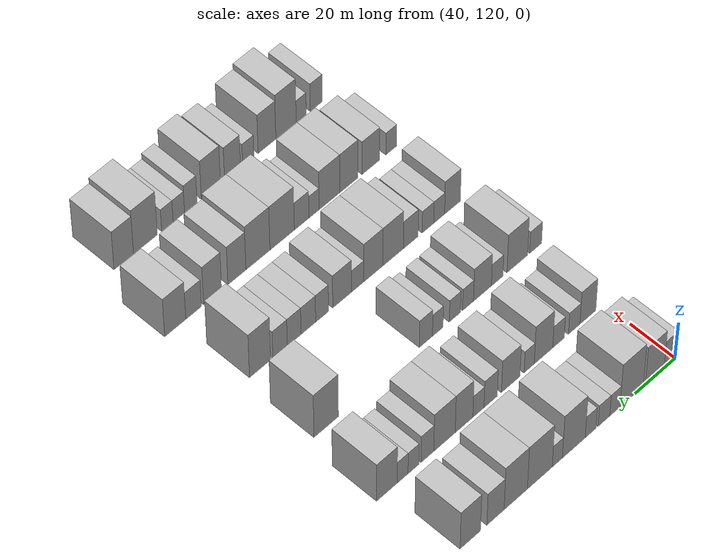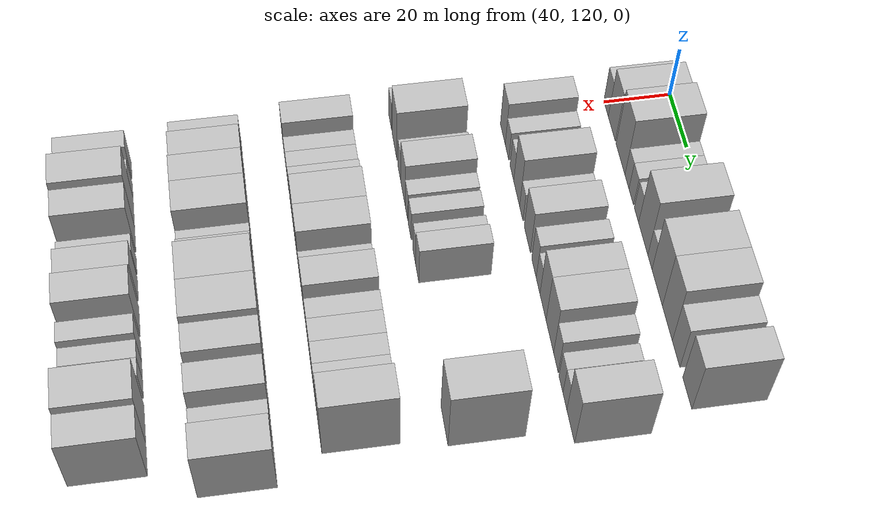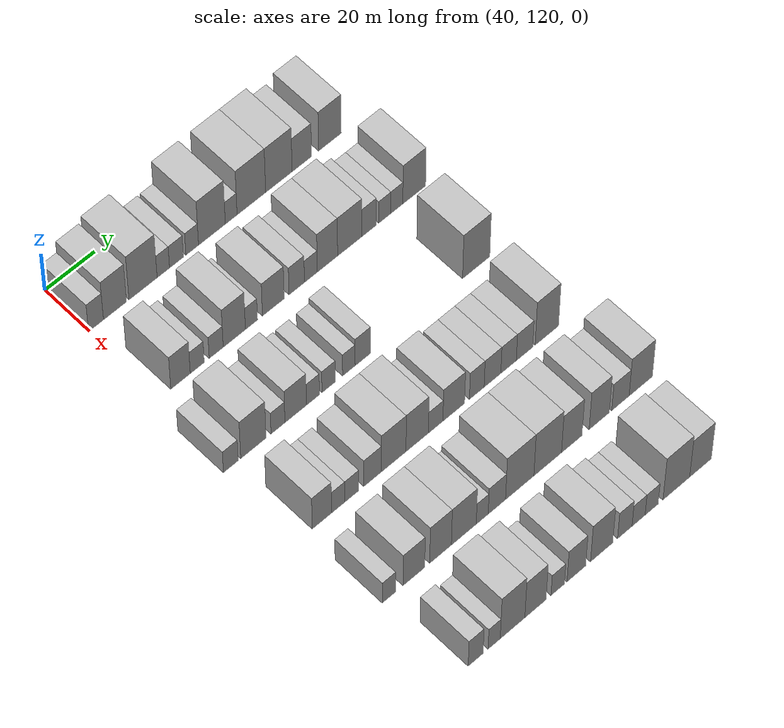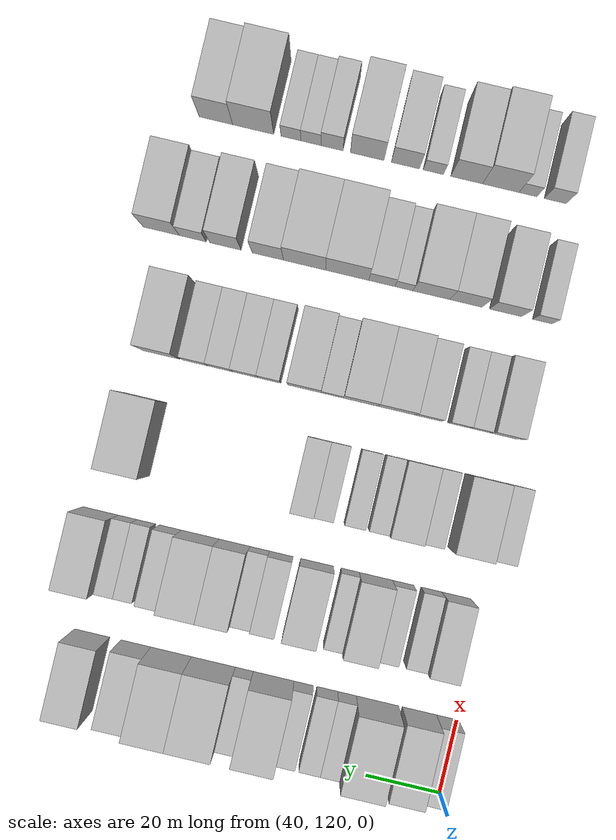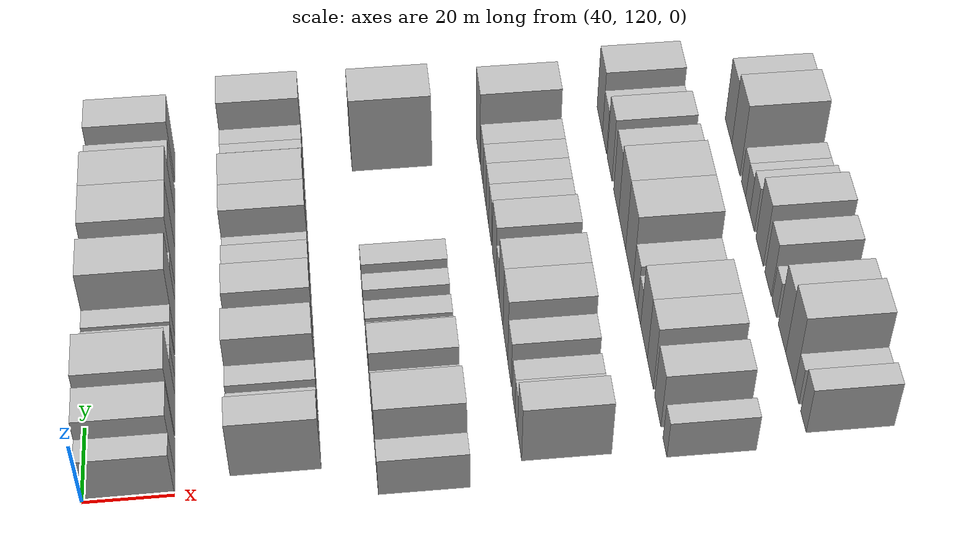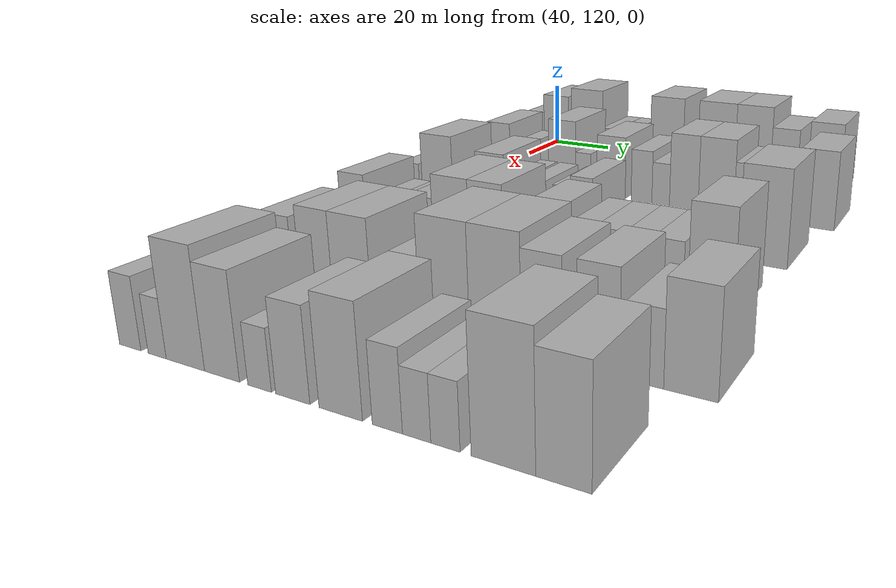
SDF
<sdf version="1.6">
 <world name="default">
  <model name="building_73">
   <static>1</static>
   <pose>50.0000 122.5929 0 0.000000 0.000000 0.000000</pose>
   <link name="link">
    <pose>0 0 7.50 0 0 0</pose>
    <collision name="collision"><geometry><box><size>20.0000 6.0414 15.0000</size></box></geometry></collision>
    <visual name="visual">
     <cast_shadows>0</cast_shadows>
     <geometry><box><size>20.0000 6.0414 15.0000</size></box></geometry>
     <material>
      <script>
       <uri>model://HANNAS_wall/materials/scripts</uri>
       <uri>model://HANNAS_wall/materials/textures</uri>
       <name>vrc/HANNAS_wall</name>
      </script>
     </material>
    </visual>
   </link>
  </model>
  <model name="building_74">
   <static>1</static>
   <pose>50.0000 130.2766 0 0.000000 0.000000 0.000000</pose>
   <link name="link">
    <pose>0 0 10.50 0 0 0</pose>
    <collision name="collision"><geometry><box><size>20.0000 9.3260 21.0000</size></box></geometry></collision>
    <visual name="visual">
     <cast_shadows>0</cast_shadows>
     <geometry><box><size>20.0000 9.3260 21.0000</size></box></geometry>
     <material>
      <script>
       <uri>model://HANNAS_wall/materials/scripts</uri>
       <uri>model://HANNAS_wall/materials/textures</uri>
       <name>vrc/HANNAS_wall</name>
      </script>
     </material>
    </visual>
   </link>
  </model>
  <model name="building_75">
   <static>1</static>
   <pose>50.0000 141.6738 0 0.000000 0.000000 0.000000</pose>
   <link name="link">
    <pose>0 0 12.00 0 0 0</pose>
    <collision name="collision"><geometry><box><size>20.0000 11.4685 24.0000</size></box></geometry></collision>
    <visual name="visual">
     <cast_shadows>0</cast_shadows>
     <geometry><box><size>20.0000 11.4685 24.0000</size></box></geometry>
     <material>
      <script>
       <uri>model://HANNAS_wall/materials/scripts</uri>
       <uri>model://HANNAS_wall/materials/textures</uri>
       <name>vrc/HANNAS_wall</name>
      </script>
     </material>
    </visual>
   </link>
  </model>
  <model name="building_76">
   <static>1</static>
   <pose>50.0000 149.9469 0 0.000000 0.000000 0.000000</pose>
   <link name="link">
    <pose>0 0 6.00 0 0 0</pose>
    <collision name="collision"><geometry><box><size>20.0000 5.0777 12.0000</size></box></geometry></collision>
    <visual name="visual">
     <cast_shadows>0</cast_shadows>
     <geometry><box><size>20.0000 5.0777 12.0000</size></box></geometry>
     <material>
      <script>
       <uri>model://HANNAS_wall/materials/scripts</uri>
       <uri>model://HANNAS_wall/materials/textures</uri>
       <name>vrc/HANNAS_wall</name>
      </script>
     </material>
    </visual>
   </link>
  </model>
  <model name="building_77">
   <static>1</static>
   <pose>50.0000 155.3294 0 0.000000 0.000000 0.000000</pose>
   <link name="link">
    <pose>0 0 6.00 0 0 0</pose>
    <collision name="collision"><geometry><box><size>20.0000 5.6872 12.0000</size></box></geometry></collision>
    <visual name="visual">
     <cast_shadows>0</cast_shadows>
     <geometry><box><size>20.0000 5.6872 12.0000</size></box></geometry>
     <material>
      <script>
       <uri>model://HANNAS_wall/materials/scripts</uri>
       <uri>model://HANNAS_wall/materials/textures</uri>
       <name>vrc/HANNAS_wall</name>
      </script>
     </material>
    </visual>
   </link>
  </model>
  <model name="building_78">
   <static>1</static>
   <pose>50.0000 161.7898 0 0.000000 0.000000 0.000000</pose>
   <link name="link">
    <pose>0 0 6.00 0 0 0</pose>
    <collision name="collision"><geometry><box><size>20.0000 5.2337 12.0000</size></box></geometry></collision>
    <visual name="visual">
     <cast_shadows>0</cast_shadows>
     <geometry><box><size>20.0000 5.2337 12.0000</size></box></geometry>
     <material>
      <script>
       <uri>model://HANNAS_wall/materials/scripts</uri>
       <uri>model://HANNAS_wall/materials/textures</uri>
       <name>vrc/HANNAS_wall</name>
      </script>
     </material>
    </visual>
   </link>
  </model>
  <model name="building_79">
   <static>1</static>
   <pose>50.0000 169.9459 0 0.000000 0.000000 0.000000</pose>
   <link name="link">
    <pose>0 0 12.00 0 0 0</pose>
    <collision name="collision"><geometry><box><size>20.0000 11.0785 24.0000</size></box></geometry></collision>
    <visual name="visual">
     <cast_shadows>0</cast_shadows>
     <geometry><box><size>20.0000 11.0785 24.0000</size></box></geometry>
     <material>
      <script>
       <uri>model://HANNAS_wall/materials/scripts</uri>
       <uri>model://HANNAS_wall/materials/textures</uri>
       <name>vrc/HANNAS_wall</name>
      </script>
     </material>
    </visual>
   </link>
  </model>
  <model name="building_80">
   <static>1</static>
   <pose>50.0000 177.9156 0 0.000000 0.000000 0.000000</pose>
   <link name="link">
    <pose>0 0 6.00 0 0 0</pose>
    <collision name="collision"><geometry><box><size>20.0000 4.8610 12.0000</size></box></geometry></collision>
    <visual name="visual">
     <cast_shadows>0</cast_shadows>
     <geometry><box><size>20.0000 4.8610 12.0000</size></box></geometry>
     <material>
      <script>
       <uri>model://HANNAS_wall/materials/scripts</uri>
       <uri>model://HANNAS_wall/materials/textures</uri>
       <name>vrc/HANNAS_wall</name>
      </script>
     </material>
    </visual>
   </link>
  </model>
  <model name="building_81">
   <static>1</static>
   <pose>50.0000 186.3079 0 0.000000 0.000000 0.000000</pose>
   <link name="link">
    <pose>0 0 12.00 0 0 0</pose>
    <collision name="collision"><geometry><box><size>20.0000 11.9235 24.0000</size></box></geometry></collision>
    <visual name="visual">
     <cast_shadows>0</cast_shadows>
     <geometry><box><size>20.0000 11.9235 24.0000</size></box></geometry>
     <material>
      <script>
       <uri>model://HANNAS_wall/materials/scripts</uri>
       <uri>model://HANNAS_wall/materials/textures</uri>
       <name>vrc/HANNAS_wall</name>
      </script>
     </material>
    </visual>
   </link>
  </model>
  <model name="building_82">
   <static>1</static>
   <pose>50.0000 197.8112 0 0.000000 0.000000 0.000000</pose>
   <link name="link">
    <pose>0 0 12.00 0 0 0</pose>
    <collision name="collision"><geometry><box><size>20.0000 11.0832 24.0000</size></box></geometry></collision>
    <visual name="visual">
     <cast_shadows>0</cast_shadows>
     <geometry><box><size>20.0000 11.0832 24.0000</size></box></geometry>
     <material>
      <script>
       <uri>model://HANNAS_wall/materials/scripts</uri>
       <uri>model://HANNAS_wall/materials/textures</uri>
       <name>vrc/HANNAS_wall</name>
      </script>
     </material>
    </visual>
   </link>
  </model>
  <model name="building_83">
   <static>1</static>
   <pose>50.0000 207.4432 0 0.000000 0.000000 0.000000</pose>
   <link name="link">
    <pose>0 0 9.00 0 0 0</pose>
    <collision name="collision"><geometry><box><size>20.0000 8.1807 18.0000</size></box></geometry></collision>
    <visual name="visual">
     <cast_shadows>0</cast_shadows>
     <geometry><box><size>20.0000 8.1807 18.0000</size></box></geometry>
     <material>
      <script>
       <uri>model://HANNAS_wall/materials/scripts</uri>
       <uri>model://HANNAS_wall/materials/textures</uri>
       <name>vrc/HANNAS_wall</name>
      </script>
     </material>
    </visual>
   </link>
  </model>
  <model name="building_84">
   <static>1</static>
   <pose>50.0000 219.3297 0 0.000000 0.000000 0.000000</pose>
   <link name="link">
    <pose>0 0 10.50 0 0 0</pose>
    <collision name="collision"><geometry><box><size>20.0000 9.5924 21.0000</size></box></geometry></collision>
    <visual name="visual">
     <cast_shadows>0</cast_shadows>
     <geometry><box><size>20.0000 9.5924 21.0000</size></box></geometry>
     <material>
      <script>
       <uri>model://HANNAS_wall/materials/scripts</uri>
       <uri>model://HANNAS_wall/materials/textures</uri>
       <name>vrc/HANNAS_wall</name>
      </script>
     </material>
    </visual>
   </link>
  </model>
  <model name="building_200">
   <static>1</static>
   <pose>82.0000 127.8350 0 0.000000 0.000000 0.000000</pose>
   <link name="link">
    <pose>0 0 9.00 0 0 0</pose>
    <collision name="collision"><geometry><box><size>20.0000 7.8873 18.0000</size></box></geometry></collision>
    <visual name="visual">
     <cast_shadows>0</cast_shadows>
     <geometry><box><size>20.0000 7.8873 18.0000</size></box></geometry>
     <material>
      <script>
       <uri>model://HANNAS_wall/materials/scripts</uri>
       <uri>model://HANNAS_wall/materials/textures</uri>
       <name>vrc/HANNAS_wall</name>
      </script>
     </material>
    </visual>
   </link>
  </model>
  <model name="building_201">
   <static>1</static>
   <pose>82.0000 134.6131 0 0.000000 0.000000 0.000000</pose>
   <link name="link">
    <pose>0 0 6.00 0 0 0</pose>
    <collision name="collision"><geometry><box><size>20.0000 5.6689 12.0000</size></box></geometry></collision>
    <visual name="visual">
     <cast_shadows>0</cast_shadows>
     <geometry><box><size>20.0000 5.6689 12.0000</size></box></geometry>
     <material>
      <script>
       <uri>model://HANNAS_wall/materials/scripts</uri>
       <uri>model://HANNAS_wall/materials/textures</uri>
       <name>vrc/HANNAS_wall</name>
      </script>
     </material>
    </visual>
   </link>
  </model>
  <model name="building_202">
   <static>1</static>
   <pose>82.0000 142.3053 0 0.000000 0.000000 0.000000</pose>
   <link name="link">
    <pose>0 0 6.00 0 0 0</pose>
    <collision name="collision"><geometry><box><size>20.0000 5.7155 12.0000</size></box></geometry></collision>
    <visual name="visual">
     <cast_shadows>0</cast_shadows>
     <geometry><box><size>20.0000 5.7155 12.0000</size></box></geometry>
     <material>
      <script>
       <uri>model://HANNAS_wall/materials/scripts</uri>
       <uri>model://HANNAS_wall/materials/textures</uri>
       <name>vrc/HANNAS_wall</name>
      </script>
     </material>
    </visual>
   </link>
  </model>
  <model name="building_203">
   <static>1</static>
   <pose>82.0000 149.7002 0 0.000000 0.000000 0.000000</pose>
   <link name="link">
    <pose>0 0 10.50 0 0 0</pose>
    <collision name="collision"><geometry><box><size>20.0000 9.0744 21.0000</size></box></geometry></collision>
    <visual name="visual">
     <cast_shadows>0</cast_shadows>
     <geometry><box><size>20.0000 9.0744 21.0000</size></box></geometry>
     <material>
      <script>
       <uri>model://HANNAS_wall/materials/scripts</uri>
       <uri>model://HANNAS_wall/materials/textures</uri>
       <name>vrc/HANNAS_wall</name>
      </script>
     </material>
    </visual>
   </link>
  </model>
  <model name="building_204">
   <static>1</static>
   <pose>82.0000 156.7230 0 0.000000 0.000000 0.000000</pose>
   <link name="link">
    <pose>0 0 6.00 0 0 0</pose>
    <collision name="collision"><geometry><box><size>20.0000 4.9712 12.0000</size></box></geometry></collision>
    <visual name="visual">
     <cast_shadows>0</cast_shadows>
     <geometry><box><size>20.0000 4.9712 12.0000</size></box></geometry>
     <material>
      <script>
       <uri>model://HANNAS_wall/materials/scripts</uri>
       <uri>model://HANNAS_wall/materials/textures</uri>
       <name>vrc/HANNAS_wall</name>
      </script>
     </material>
    </visual>
   </link>
  </model>
  <model name="building_205">
   <static>1</static>
   <pose>82.0000 165.6934 0 0.000000 0.000000 0.000000</pose>
   <link name="link">
    <pose>0 0 9.00 0 0 0</pose>
    <collision name="collision"><geometry><box><size>20.0000 8.9697 18.0000</size></box></geometry></collision>
    <visual name="visual">
     <cast_shadows>0</cast_shadows>
     <geometry><box><size>20.0000 8.9697 18.0000</size></box></geometry>
     <material>
      <script>
       <uri>model://HANNAS_wall/materials/scripts</uri>
       <uri>model://HANNAS_wall/materials/textures</uri>
       <name>vrc/HANNAS_wall</name>
      </script>
     </material>
    </visual>
   </link>
  </model>
  <model name="building_206">
   <static>1</static>
   <pose>82.0000 175.3781 0 0.000000 0.000000 0.000000</pose>
   <link name="link">
    <pose>0 0 7.50 0 0 0</pose>
    <collision name="collision"><geometry><box><size>20.0000 6.3997 15.0000</size></box></geometry></collision>
    <visual name="visual">
     <cast_shadows>0</cast_shadows>
     <geometry><box><size>20.0000 6.3997 15.0000</size></box></geometry>
     <material>
      <script>
       <uri>model://HANNAS_wall/materials/scripts</uri>
       <uri>model://HANNAS_wall/materials/textures</uri>
       <name>vrc/HANNAS_wall</name>
      </script>
     </material>
    </visual>
   </link>
  </model>
  <model name="building_207">
   <static>1</static>
   <pose>82.0000 181.2431 0 0.000000 0.000000 0.000000</pose>
   <link name="link">
    <pose>0 0 6.00 0 0 0</pose>
    <collision name="collision"><geometry><box><size>20.0000 5.3304 12.0000</size></box></geometry></collision>
    <visual name="visual">
     <cast_shadows>0</cast_shadows>
     <geometry><box><size>20.0000 5.3304 12.0000</size></box></geometry>
     <material>
      <script>
       <uri>model://HANNAS_wall/materials/scripts</uri>
       <uri>model://HANNAS_wall/materials/textures</uri>
       <name>vrc/HANNAS_wall</name>
      </script>
     </material>
    </visual>
   </link>
  </model>
  <model name="building_208">
   <static>1</static>
   <pose>82.0000 188.1430 0 0.000000 0.000000 0.000000</pose>
   <link name="link">
    <pose>0 0 10.50 0 0 0</pose>
    <collision name="collision"><geometry><box><size>20.0000 8.4694 21.0000</size></box></geometry></collision>
    <visual name="visual">
     <cast_shadows>0</cast_shadows>
     <geometry><box><size>20.0000 8.4694 21.0000</size></box></geometry>
     <material>
      <script>
       <uri>model://HANNAS_wall/materials/scripts</uri>
       <uri>model://HANNAS_wall/materials/textures</uri>
       <name>vrc/HANNAS_wall</name>
      </script>
     </material>
    </visual>
   </link>
  </model>
  <model name="building_209">
   <static>1</static>
   <pose>82.0000 197.4846 0 0.000000 0.000000 0.000000</pose>
   <link name="link">
    <pose>0 0 10.50 0 0 0</pose>
    <collision name="collision"><geometry><box><size>20.0000 10.2139 21.0000</size></box></geometry></collision>
    <visual name="visual">
     <cast_shadows>0</cast_shadows>
     <geometry><box><size>20.0000 10.2139 21.0000</size></box></geometry>
     <material>
      <script>
       <uri>model://HANNAS_wall/materials/scripts</uri>
       <uri>model://HANNAS_wall/materials/textures</uri>
       <name>vrc/HANNAS_wall</name>
      </script>
     </material>
    </visual>
   </link>
  </model>
  <model name="building_210">
   <static>1</static>
   <pose>82.0000 205.6117 0 0.000000 0.000000 0.000000</pose>
   <link name="link">
    <pose>0 0 7.50 0 0 0</pose>
    <collision name="collision"><geometry><box><size>20.0000 6.0403 15.0000</size></box></geometry></collision>
    <visual name="visual">
     <cast_shadows>0</cast_shadows>
     <geometry><box><size>20.0000 6.0403 15.0000</size></box></geometry>
     <material>
      <script>
       <uri>model://HANNAS_wall/materials/scripts</uri>
       <uri>model://HANNAS_wall/materials/textures</uri>
       <name>vrc/HANNAS_wall</name>
      </script>
     </material>
    </visual>
   </link>
  </model>
  <model name="building_211">
   <static>1</static>
   <pose>82.0000 212.1862 0 0.000000 0.000000 0.000000</pose>
   <link name="link">
    <pose>0 0 6.00 0 0 0</pose>
    <collision name="collision"><geometry><box><size>20.0000 5.1088 12.0000</size></box></geometry></collision>
    <visual name="visual">
     <cast_shadows>0</cast_shadows>
     <geometry><box><size>20.0000 5.1088 12.0000</size></box></geometry>
     <material>
      <script>
       <uri>model://HANNAS_wall/materials/scripts</uri>
       <uri>model://HANNAS_wall/materials/textures</uri>
       <name>vrc/HANNAS_wall</name>
      </script>
     </material>
    </visual>
   </link>
  </model>
  <model name="building_212">
   <static>1</static>
   <pose>82.0000 217.2715 0 0.000000 0.000000 0.000000</pose>
   <link name="link">
    <pose>0 0 6.00 0 0 0</pose>
    <collision name="collision"><geometry><box><size>20.0000 5.0617 12.0000</size></box></geometry></collision>
    <visual name="visual">
     <cast_shadows>0</cast_shadows>
     <geometry><box><size>20.0000 5.0617 12.0000</size></box></geometry>
     <material>
      <script>
       <uri>model://HANNAS_wall/materials/scripts</uri>
       <uri>model://HANNAS_wall/materials/textures</uri>
       <name>vrc/HANNAS_wall</name>
      </script>
     </material>
    </visual>
   </link>
  </model>
  <model name="building_213">
   <static>1</static>
   <pose>82.0000 224.6336 0 0.000000 0.000000 0.000000</pose>
   <link name="link">
    <pose>0 0 10.50 0 0 0</pose>
    <collision name="collision"><geometry><box><size>20.0000 9.6625 21.0000</size></box></geometry></collision>
    <visual name="visual">
     <cast_shadows>0</cast_shadows>
     <geometry><box><size>20.0000 9.6625 21.0000</size></box></geometry>
     <material>
      <script>
       <uri>model://HANNAS_wall/materials/scripts</uri>
       <uri>model://HANNAS_wall/materials/textures</uri>
       <name>vrc/HANNAS_wall</name>
      </script>
     </material>
    </visual>
   </link>
  </model>
  <model name="building_322">
   <static>1</static>
   <pose>114.0000 118.7759 0 0.000000 0.000000 0.000000</pose>
   <link name="link">
    <pose>0 0 6.00 0 0 0</pose>
    <collision name="collision"><geometry><box><size>20.0000 5.9537 12.0000</size></box></geometry></collision>
    <visual name="visual">
     <cast_shadows>0</cast_shadows>
     <geometry><box><size>20.0000 5.9537 12.0000</size></box></geometry>
     <material>
      <script>
       <uri>model://HANNAS_wall/materials/scripts</uri>
       <uri>model://HANNAS_wall/materials/textures</uri>
       <name>vrc/HANNAS_wall</name>
      </script>
     </material>
    </visual>
   </link>
  </model>
  <model name="building_323">
   <static>1</static>
   <pose>114.0000 127.8706 0 0.000000 0.000000 0.000000</pose>
   <link name="link">
    <pose>0 0 10.50 0 0 0</pose>
    <collision name="collision"><geometry><box><size>20.0000 10.2358 21.0000</size></box></geometry></collision>
    <visual name="visual">
     <cast_shadows>0</cast_shadows>
     <geometry><box><size>20.0000 10.2358 21.0000</size></box></geometry>
     <material>
      <script>
       <uri>model://HANNAS_wall/materials/scripts</uri>
       <uri>model://HANNAS_wall/materials/textures</uri>
       <name>vrc/HANNAS_wall</name>
      </script>
     </material>
    </visual>
   </link>
  </model>
  <model name="building_324">
   <static>1</static>
   <pose>114.0000 137.8188 0 0.000000 0.000000 0.000000</pose>
   <link name="link">
    <pose>0 0 6.00 0 0 0</pose>
    <collision name="collision"><geometry><box><size>20.0000 5.6604 12.0000</size></box></geometry></collision>
    <visual name="visual">
     <cast_shadows>0</cast_shadows>
     <geometry><box><size>20.0000 5.6604 12.0000</size></box></geometry>
     <material>
      <script>
       <uri>model://HANNAS_wall/materials/scripts</uri>
       <uri>model://HANNAS_wall/materials/textures</uri>
       <name>vrc/HANNAS_wall</name>
      </script>
     </material>
    </visual>
   </link>
  </model>
  <model name="building_325">
   <static>1</static>
   <pose>114.0000 145.0385 0 0.000000 0.000000 0.000000</pose>
   <link name="link">
    <pose>0 0 9.00 0 0 0</pose>
    <collision name="collision"><geometry><box><size>20.0000 8.7791 18.0000</size></box></geometry></collision>
    <visual name="visual">
     <cast_shadows>0</cast_shadows>
     <geometry><box><size>20.0000 8.7791 18.0000</size></box></geometry>
     <material>
      <script>
       <uri>model://HANNAS_wall/materials/scripts</uri>
       <uri>model://HANNAS_wall/materials/textures</uri>
       <name>vrc/HANNAS_wall</name>
      </script>
     </material>
    </visual>
   </link>
  </model>
  <model name="building_326">
   <static>1</static>
   <pose>114.0000 152.0845 0 0.000000 0.000000 0.000000</pose>
   <link name="link">
    <pose>0 0 6.00 0 0 0</pose>
    <collision name="collision"><geometry><box><size>20.0000 5.3127 12.0000</size></box></geometry></collision>
    <visual name="visual">
     <cast_shadows>0</cast_shadows>
     <geometry><box><size>20.0000 5.3127 12.0000</size></box></geometry>
     <material>
      <script>
       <uri>model://HANNAS_wall/materials/scripts</uri>
       <uri>model://HANNAS_wall/materials/textures</uri>
       <name>vrc/HANNAS_wall</name>
      </script>
     </material>
    </visual>
   </link>
  </model>
  <model name="building_327">
   <static>1</static>
   <pose>114.0000 158.4815 0 0.000000 0.000000 0.000000</pose>
   <link name="link">
    <pose>0 0 6.00 0 0 0</pose>
    <collision name="collision"><geometry><box><size>20.0000 5.4814 12.0000</size></box></geometry></collision>
    <visual name="visual">
     <cast_shadows>0</cast_shadows>
     <geometry><box><size>20.0000 5.4814 12.0000</size></box></geometry>
     <material>
      <script>
       <uri>model://HANNAS_wall/materials/scripts</uri>
       <uri>model://HANNAS_wall/materials/textures</uri>
       <name>vrc/HANNAS_wall</name>
      </script>
     </material>
    </visual>
   </link>
  </model>
  <model name="building_328">
   <static>1</static>
   <pose>114.0000 166.8052 0 0.000000 0.000000 0.000000</pose>
   <link name="link">
    <pose>0 0 6.00 0 0 0</pose>
    <collision name="collision"><geometry><box><size>20.0000 5.1660 12.0000</size></box></geometry></collision>
    <visual name="visual">
     <cast_shadows>0</cast_shadows>
     <geometry><box><size>20.0000 5.1660 12.0000</size></box></geometry>
     <material>
      <script>
       <uri>model://HANNAS_wall/materials/scripts</uri>
       <uri>model://HANNAS_wall/materials/textures</uri>
       <name>vrc/HANNAS_wall</name>
      </script>
     </material>
    </visual>
   </link>
  </model>
  <model name="building_329">
   <static>1</static>
   <pose>114.0000 172.5439 0 0.000000 0.000000 0.000000</pose>
   <link name="link">
    <pose>0 0 7.50 0 0 0</pose>
    <collision name="collision"><geometry><box><size>20.0000 6.3115 15.0000</size></box></geometry></collision>
    <visual name="visual">
     <cast_shadows>0</cast_shadows>
     <geometry><box><size>20.0000 6.3115 15.0000</size></box></geometry>
     <material>
      <script>
       <uri>model://HANNAS_wall/materials/scripts</uri>
       <uri>model://HANNAS_wall/materials/textures</uri>
       <name>vrc/HANNAS_wall</name>
      </script>
     </material>
    </visual>
   </link>
  </model>
  <model name="building_330">
   <static>1</static>
   <pose>114.0000 219.9646 0 0.000000 0.000000 0.000000</pose>
   <link name="link">
    <pose>0 0 12.00 0 0 0</pose>
    <collision name="collision"><geometry><box><size>20.0000 11.5100 24.0000</size></box></geometry></collision>
    <visual name="visual">
     <cast_shadows>0</cast_shadows>
     <geometry><box><size>20.0000 11.5100 24.0000</size></box></geometry>
     <material>
      <script>
       <uri>model://HANNAS_wall/materials/scripts</uri>
       <uri>model://HANNAS_wall/materials/textures</uri>
       <name>vrc/HANNAS_wall</name>
      </script>
     </material>
    </visual>
   </link>
  </model>
  <model name="building_441">
   <static>1</static>
   <pose>146.0000 125.6432 0 0.000000 0.000000 0.000000</pose>
   <link name="link">
    <pose>0 0 9.00 0 0 0</pose>
    <collision name="collision"><geometry><box><size>20.0000 7.8090 18.0000</size></box></geometry></collision>
    <visual name="visual">
     <cast_shadows>0</cast_shadows>
     <geometry><box><size>20.0000 7.8090 18.0000</size></box></geometry>
     <material>
      <script>
       <uri>model://HANNAS_wall/materials/scripts</uri>
       <uri>model://HANNAS_wall/materials/textures</uri>
       <name>vrc/HANNAS_wall</name>
      </script>
     </material>
    </visual>
   </link>
  </model>
  <model name="building_442">
   <static>1</static>
   <pose>146.0000 132.2266 0 0.000000 0.000000 0.000000</pose>
   <link name="link">
    <pose>0 0 6.00 0 0 0</pose>
    <collision name="collision"><geometry><box><size>20.0000 5.3579 12.0000</size></box></geometry></collision>
    <visual name="visual">
     <cast_shadows>0</cast_shadows>
     <geometry><box><size>20.0000 5.3579 12.0000</size></box></geometry>
     <material>
      <script>
       <uri>model://HANNAS_wall/materials/scripts</uri>
       <uri>model://HANNAS_wall/materials/textures</uri>
       <name>vrc/HANNAS_wall</name>
      </script>
     </material>
    </visual>
   </link>
  </model>
  <model name="building_443">
   <static>1</static>
   <pose>146.0000 137.7508 0 0.000000 0.000000 0.000000</pose>
   <link name="link">
    <pose>0 0 6.00 0 0 0</pose>
    <collision name="collision"><geometry><box><size>20.0000 5.6904 12.0000</size></box></geometry></collision>
    <visual name="visual">
     <cast_shadows>0</cast_shadows>
     <geometry><box><size>20.0000 5.6904 12.0000</size></box></geometry>
     <material>
      <script>
       <uri>model://HANNAS_wall/materials/scripts</uri>
       <uri>model://HANNAS_wall/materials/textures</uri>
       <name>vrc/HANNAS_wall</name>
      </script>
     </material>
    </visual>
   </link>
  </model>
  <model name="building_444">
   <static>1</static>
   <pose>146.0000 146.1808 0 0.000000 0.000000 0.000000</pose>
   <link name="link">
    <pose>0 0 7.50 0 0 0</pose>
    <collision name="collision"><geometry><box><size>20.0000 7.1698 15.0000</size></box></geometry></collision>
    <visual name="visual">
     <cast_shadows>0</cast_shadows>
     <geometry><box><size>20.0000 7.1698 15.0000</size></box></geometry>
     <material>
      <script>
       <uri>model://HANNAS_wall/materials/scripts</uri>
       <uri>model://HANNAS_wall/materials/textures</uri>
       <name>vrc/HANNAS_wall</name>
      </script>
     </material>
    </visual>
   </link>
  </model>
  <model name="building_445">
   <static>1</static>
   <pose>146.0000 154.7844 0 0.000000 0.000000 0.000000</pose>
   <link name="link">
    <pose>0 0 10.50 0 0 0</pose>
    <collision name="collision"><geometry><box><size>20.0000 10.0373 21.0000</size></box></geometry></collision>
    <visual name="visual">
     <cast_shadows>0</cast_shadows>
     <geometry><box><size>20.0000 10.0373 21.0000</size></box></geometry>
     <material>
      <script>
       <uri>model://HANNAS_wall/materials/scripts</uri>
       <uri>model://HANNAS_wall/materials/textures</uri>
       <name>vrc/HANNAS_wall</name>
      </script>
     </material>
    </visual>
   </link>
  </model>
  <model name="building_446">
   <static>1</static>
   <pose>146.0000 164.4134 0 0.000000 0.000000 0.000000</pose>
   <link name="link">
    <pose>0 0 10.50 0 0 0</pose>
    <collision name="collision"><geometry><box><size>20.0000 9.2206 21.0000</size></box></geometry></collision>
    <visual name="visual">
     <cast_shadows>0</cast_shadows>
     <geometry><box><size>20.0000 9.2206 21.0000</size></box></geometry>
     <material>
      <script>
       <uri>model://HANNAS_wall/materials/scripts</uri>
       <uri>model://HANNAS_wall/materials/textures</uri>
       <name>vrc/HANNAS_wall</name>
      </script>
     </material>
    </visual>
   </link>
  </model>
  <model name="building_447">
   <static>1</static>
   <pose>146.0000 172.0233 0 0.000000 0.000000 0.000000</pose>
   <link name="link">
    <pose>0 0 6.00 0 0 0</pose>
    <collision name="collision"><geometry><box><size>20.0000 5.9993 12.0000</size></box></geometry></collision>
    <visual name="visual">
     <cast_shadows>0</cast_shadows>
     <geometry><box><size>20.0000 5.9993 12.0000</size></box></geometry>
     <material>
      <script>
       <uri>model://HANNAS_wall/materials/scripts</uri>
       <uri>model://HANNAS_wall/materials/textures</uri>
       <name>vrc/HANNAS_wall</name>
      </script>
     </material>
    </visual>
   </link>
  </model>
  <model name="building_448">
   <static>1</static>
   <pose>146.0000 179.5099 0 0.000000 0.000000 0.000000</pose>
   <link name="link">
    <pose>0 0 9.00 0 0 0</pose>
    <collision name="collision"><geometry><box><size>20.0000 8.9737 18.0000</size></box></geometry></collision>
    <visual name="visual">
     <cast_shadows>0</cast_shadows>
     <geometry><box><size>20.0000 8.9737 18.0000</size></box></geometry>
     <material>
      <script>
       <uri>model://HANNAS_wall/materials/scripts</uri>
       <uri>model://HANNAS_wall/materials/textures</uri>
       <name>vrc/HANNAS_wall</name>
      </script>
     </material>
    </visual>
   </link>
  </model>
  <model name="building_449">
   <static>1</static>
   <pose>146.0000 189.0609 0 0.000000 0.000000 0.000000</pose>
   <link name="link">
    <pose>0 0 7.50 0 0 0</pose>
    <collision name="collision"><geometry><box><size>20.0000 6.1283 15.0000</size></box></geometry></collision>
    <visual name="visual">
     <cast_shadows>0</cast_shadows>
     <geometry><box><size>20.0000 6.1283 15.0000</size></box></geometry>
     <material>
      <script>
       <uri>model://HANNAS_wall/materials/scripts</uri>
       <uri>model://HANNAS_wall/materials/textures</uri>
       <name>vrc/HANNAS_wall</name>
      </script>
     </material>
    </visual>
   </link>
  </model>
  <model name="building_450">
   <static>1</static>
   <pose>146.0000 195.6116 0 0.000000 0.000000 0.000000</pose>
   <link name="link">
    <pose>0 0 7.50 0 0 0</pose>
    <collision name="collision"><geometry><box><size>20.0000 6.9732 15.0000</size></box></geometry></collision>
    <visual name="visual">
     <cast_shadows>0</cast_shadows>
     <geometry><box><size>20.0000 6.9732 15.0000</size></box></geometry>
     <material>
      <script>
       <uri>model://HANNAS_wall/materials/scripts</uri>
       <uri>model://HANNAS_wall/materials/textures</uri>
       <name>vrc/HANNAS_wall</name>
      </script>
     </material>
    </visual>
   </link>
  </model>
  <model name="building_451">
   <static>1</static>
   <pose>146.0000 202.3458 0 0.000000 0.000000 0.000000</pose>
   <link name="link">
    <pose>0 0 7.50 0 0 0</pose>
    <collision name="collision"><geometry><box><size>20.0000 6.4952 15.0000</size></box></geometry></collision>
    <visual name="visual">
     <cast_shadows>0</cast_shadows>
     <geometry><box><size>20.0000 6.4952 15.0000</size></box></geometry>
     <material>
      <script>
       <uri>model://HANNAS_wall/materials/scripts</uri>
       <uri>model://HANNAS_wall/materials/textures</uri>
       <name>vrc/HANNAS_wall</name>
      </script>
     </material>
    </visual>
   </link>
  </model>
  <model name="building_452">
   <static>1</static>
   <pose>146.0000 209.0466 0 0.000000 0.000000 0.000000</pose>
   <link name="link">
    <pose>0 0 7.50 0 0 0</pose>
    <collision name="collision"><geometry><box><size>20.0000 6.9064 15.0000</size></box></geometry></collision>
    <visual name="visual">
     <cast_shadows>0</cast_shadows>
     <geometry><box><size>20.0000 6.9064 15.0000</size></box></geometry>
     <material>
      <script>
       <uri>model://HANNAS_wall/materials/scripts</uri>
       <uri>model://HANNAS_wall/materials/textures</uri>
       <name>vrc/HANNAS_wall</name>
      </script>
     </material>
    </visual>
   </link>
  </model>
  <model name="building_453">
   <static>1</static>
   <pose>146.0000 218.4455 0 0.000000 0.000000 0.000000</pose>
   <link name="link">
    <pose>0 0 12.00 0 0 0</pose>
    <collision name="collision"><geometry><box><size>20.0000 9.8913 24.0000</size></box></geometry></collision>
    <visual name="visual">
     <cast_shadows>0</cast_shadows>
     <geometry><box><size>20.0000 9.8913 24.0000</size></box></geometry>
     <material>
      <script>
       <uri>model://HANNAS_wall/materials/scripts</uri>
       <uri>model://HANNAS_wall/materials/textures</uri>
       <name>vrc/HANNAS_wall</name>
      </script>
     </material>
    </visual>
   </link>
  </model>
  <model name="building_556">
   <static>1</static>
   <pose>178.0000 122.2871 0 0.000000 0.000000 0.000000</pose>
   <link name="link">
    <pose>0 0 6.00 0 0 0</pose>
    <collision name="collision"><geometry><box><size>20.0000 5.3343 12.0000</size></box></geometry></collision>
    <visual name="visual">
     <cast_shadows>0</cast_shadows>
     <geometry><box><size>20.0000 5.3343 12.0000</size></box></geometry>
     <material>
      <script>
       <uri>model://HANNAS_wall/materials/scripts</uri>
       <uri>model://HANNAS_wall/materials/textures</uri>
       <name>vrc/HANNAS_wall</name>
      </script>
     </material>
    </visual>
   </link>
  </model>
  <model name="building_557">
   <static>1</static>
   <pose>178.0000 132.3391 0 0.000000 0.000000 0.000000</pose>
   <link name="link">
    <pose>0 0 9.00 0 0 0</pose>
    <collision name="collision"><geometry><box><size>20.0000 8.7697 18.0000</size></box></geometry></collision>
    <visual name="visual">
     <cast_shadows>0</cast_shadows>
     <geometry><box><size>20.0000 8.7697 18.0000</size></box></geometry>
     <material>
      <script>
       <uri>model://HANNAS_wall/materials/scripts</uri>
       <uri>model://HANNAS_wall/materials/textures</uri>
       <name>vrc/HANNAS_wall</name>
      </script>
     </material>
    </visual>
   </link>
  </model>
  <model name="building_558">
   <static>1</static>
   <pose>178.0000 143.1316 0 0.000000 0.000000 0.000000</pose>
   <link name="link">
    <pose>0 0 10.50 0 0 0</pose>
    <collision name="collision"><geometry><box><size>20.0000 8.8154 21.0000</size></box></geometry></collision>
    <visual name="visual">
     <cast_shadows>0</cast_shadows>
     <geometry><box><size>20.0000 8.8154 21.0000</size></box></geometry>
     <material>
      <script>
       <uri>model://HANNAS_wall/materials/scripts</uri>
       <uri>model://HANNAS_wall/materials/textures</uri>
       <name>vrc/HANNAS_wall</name>
      </script>
     </material>
    </visual>
   </link>
  </model>
  <model name="building_559">
   <static>1</static>
   <pose>178.0000 152.6132 0 0.000000 0.000000 0.000000</pose>
   <link name="link">
    <pose>0 0 10.50 0 0 0</pose>
    <collision name="collision"><geometry><box><size>20.0000 10.1477 21.0000</size></box></geometry></collision>
    <visual name="visual">
     <cast_shadows>0</cast_shadows>
     <geometry><box><size>20.0000 10.1477 21.0000</size></box></geometry>
     <material>
      <script>
       <uri>model://HANNAS_wall/materials/scripts</uri>
       <uri>model://HANNAS_wall/materials/textures</uri>
       <name>vrc/HANNAS_wall</name>
      </script>
     </material>
    </visual>
   </link>
  </model>
  <model name="building_560">
   <static>1</static>
   <pose>178.0000 160.1387 0 0.000000 0.000000 0.000000</pose>
   <link name="link">
    <pose>0 0 6.00 0 0 0</pose>
    <collision name="collision"><geometry><box><size>20.0000 4.9032 12.0000</size></box></geometry></collision>
    <visual name="visual">
     <cast_shadows>0</cast_shadows>
     <geometry><box><size>20.0000 4.9032 12.0000</size></box></geometry>
     <material>
      <script>
       <uri>model://HANNAS_wall/materials/scripts</uri>
       <uri>model://HANNAS_wall/materials/textures</uri>
       <name>vrc/HANNAS_wall</name>
      </script>
     </material>
    </visual>
   </link>
  </model>
  <model name="building_561">
   <static>1</static>
   <pose>178.0000 166.1487 0 0.000000 0.000000 0.000000</pose>
   <link name="link">
    <pose>0 0 7.50 0 0 0</pose>
    <collision name="collision"><geometry><box><size>20.0000 7.1168 15.0000</size></box></geometry></collision>
    <visual name="visual">
     <cast_shadows>0</cast_shadows>
     <geometry><box><size>20.0000 7.1168 15.0000</size></box></geometry>
     <material>
      <script>
       <uri>model://HANNAS_wall/materials/scripts</uri>
       <uri>model://HANNAS_wall/materials/textures</uri>
       <name>vrc/HANNAS_wall</name>
      </script>
     </material>
    </visual>
   </link>
  </model>
  <model name="building_562">
   <static>1</static>
   <pose>178.0000 175.5638 0 0.000000 0.000000 0.000000</pose>
   <link name="link">
    <pose>0 0 12.00 0 0 0</pose>
    <collision name="collision"><geometry><box><size>20.0000 11.7135 24.0000</size></box></geometry></collision>
    <visual name="visual">
     <cast_shadows>0</cast_shadows>
     <geometry><box><size>20.0000 11.7135 24.0000</size></box></geometry>
     <material>
      <script>
       <uri>model://HANNAS_wall/materials/scripts</uri>
       <uri>model://HANNAS_wall/materials/textures</uri>
       <name>vrc/HANNAS_wall</name>
      </script>
     </material>
    </visual>
   </link>
  </model>
  <model name="building_563">
   <static>1</static>
   <pose>178.0000 187.1655 0 0.000000 0.000000 0.000000</pose>
   <link name="link">
    <pose>0 0 12.00 0 0 0</pose>
    <collision name="collision"><geometry><box><size>20.0000 11.4899 24.0000</size></box></geometry></collision>
    <visual name="visual">
     <cast_shadows>0</cast_shadows>
     <geometry><box><size>20.0000 11.4899 24.0000</size></box></geometry>
     <material>
      <script>
       <uri>model://HANNAS_wall/materials/scripts</uri>
       <uri>model://HANNAS_wall/materials/textures</uri>
       <name>vrc/HANNAS_wall</name>
      </script>
     </material>
    </visual>
   </link>
  </model>
  <model name="building_564">
   <static>1</static>
   <pose>178.0000 197.1858 0 0.000000 0.000000 0.000000</pose>
   <link name="link">
    <pose>0 0 10.50 0 0 0</pose>
    <collision name="collision"><geometry><box><size>20.0000 8.5508 21.0000</size></box></geometry></collision>
    <visual name="visual">
     <cast_shadows>0</cast_shadows>
     <geometry><box><size>20.0000 8.5508 21.0000</size></box></geometry>
     <material>
      <script>
       <uri>model://HANNAS_wall/materials/scripts</uri>
       <uri>model://HANNAS_wall/materials/textures</uri>
       <name>vrc/HANNAS_wall</name>
      </script>
     </material>
    </visual>
   </link>
  </model>
  <model name="building_565">
   <static>1</static>
   <pose>178.0000 208.7146 0 0.000000 0.000000 0.000000</pose>
   <link name="link">
    <pose>0 0 10.50 0 0 0</pose>
    <collision name="collision"><geometry><box><size>20.0000 8.5067 21.0000</size></box></geometry></collision>
    <visual name="visual">
     <cast_shadows>0</cast_shadows>
     <geometry><box><size>20.0000 8.5067 21.0000</size></box></geometry>
     <material>
      <script>
       <uri>model://HANNAS_wall/materials/scripts</uri>
       <uri>model://HANNAS_wall/materials/textures</uri>
       <name>vrc/HANNAS_wall</name>
      </script>
     </material>
    </visual>
   </link>
  </model>
  <model name="building_566">
   <static>1</static>
   <pose>178.0000 217.6409 0 0.000000 0.000000 0.000000</pose>
   <link name="link">
    <pose>0 0 7.50 0 0 0</pose>
    <collision name="collision"><geometry><box><size>20.0000 7.3459 15.0000</size></box></geometry></collision>
    <visual name="visual">
     <cast_shadows>0</cast_shadows>
     <geometry><box><size>20.0000 7.3459 15.0000</size></box></geometry>
     <material>
      <script>
       <uri>model://HANNAS_wall/materials/scripts</uri>
       <uri>model://HANNAS_wall/materials/textures</uri>
       <name>vrc/HANNAS_wall</name>
      </script>
     </material>
    </visual>
   </link>
  </model>
  <model name="building_567">
   <static>1</static>
   <pose>178.0000 226.2439 0 0.000000 0.000000 0.000000</pose>
   <link name="link">
    <pose>0 0 10.50 0 0 0</pose>
    <collision name="collision"><geometry><box><size>20.0000 9.8602 21.0000</size></box></geometry></collision>
    <visual name="visual">
     <cast_shadows>0</cast_shadows>
     <geometry><box><size>20.0000 9.8602 21.0000</size></box></geometry>
     <material>
      <script>
       <uri>model://HANNAS_wall/materials/scripts</uri>
       <uri>model://HANNAS_wall/materials/textures</uri>
       <name>vrc/HANNAS_wall</name>
      </script>
     </material>
    </visual>
   </link>
  </model>
  <model name="building_669">
   <static>1</static>
   <pose>210.0000 126.3031 0 0.000000 0.000000 0.000000</pose>
   <link name="link">
    <pose>0 0 7.50 0 0 0</pose>
    <collision name="collision"><geometry><box><size>20.0000 6.0062 15.0000</size></box></geometry></collision>
    <visual name="visual">
     <cast_shadows>0</cast_shadows>
     <geometry><box><size>20.0000 6.0062 15.0000</size></box></geometry>
     <material>
      <script>
       <uri>model://HANNAS_wall/materials/scripts</uri>
       <uri>model://HANNAS_wall/materials/textures</uri>
       <name>vrc/HANNAS_wall</name>
      </script>
     </material>
    </visual>
   </link>
  </model>
  <model name="building_670">
   <static>1</static>
   <pose>210.0000 133.7553 0 0.000000 0.000000 0.000000</pose>
   <link name="link">
    <pose>0 0 6.00 0 0 0</pose>
    <collision name="collision"><geometry><box><size>20.0000 4.8981 12.0000</size></box></geometry></collision>
    <visual name="visual">
     <cast_shadows>0</cast_shadows>
     <geometry><box><size>20.0000 4.8981 12.0000</size></box></geometry>
     <material>
      <script>
       <uri>model://HANNAS_wall/materials/scripts</uri>
       <uri>model://HANNAS_wall/materials/textures</uri>
       <name>vrc/HANNAS_wall</name>
      </script>
     </material>
    </visual>
   </link>
  </model>
  <model name="building_671">
   <static>1</static>
   <pose>210.0000 141.2016 0 0.000000 0.000000 0.000000</pose>
   <link name="link">
    <pose>0 0 12.00 0 0 0</pose>
    <collision name="collision"><geometry><box><size>20.0000 9.9945 24.0000</size></box></geometry></collision>
    <visual name="visual">
     <cast_shadows>0</cast_shadows>
     <geometry><box><size>20.0000 9.9945 24.0000</size></box></geometry>
     <material>
      <script>
       <uri>model://HANNAS_wall/materials/scripts</uri>
       <uri>model://HANNAS_wall/materials/textures</uri>
       <name>vrc/HANNAS_wall</name>
      </script>
     </material>
    </visual>
   </link>
  </model>
  <model name="building_672">
   <static>1</static>
   <pose>210.0000 150.5215 0 0.000000 0.000000 0.000000</pose>
   <link name="link">
    <pose>0 0 10.50 0 0 0</pose>
    <collision name="collision"><geometry><box><size>20.0000 8.6455 21.0000</size></box></geometry></collision>
    <visual name="visual">
     <cast_shadows>0</cast_shadows>
     <geometry><box><size>20.0000 8.6455 21.0000</size></box></geometry>
     <material>
      <script>
       <uri>model://HANNAS_wall/materials/scripts</uri>
       <uri>model://HANNAS_wall/materials/textures</uri>
       <name>vrc/HANNAS_wall</name>
      </script>
     </material>
    </visual>
   </link>
  </model>
  <model name="building_673">
   <static>1</static>
   <pose>210.0000 159.6185 0 0.000000 0.000000 0.000000</pose>
   <link name="link">
    <pose>0 0 6.00 0 0 0</pose>
    <collision name="collision"><geometry><box><size>20.0000 5.5484 12.0000</size></box></geometry></collision>
    <visual name="visual">
     <cast_shadows>0</cast_shadows>
     <geometry><box><size>20.0000 5.5484 12.0000</size></box></geometry>
     <material>
      <script>
       <uri>model://HANNAS_wall/materials/scripts</uri>
       <uri>model://HANNAS_wall/materials/textures</uri>
       <name>vrc/HANNAS_wall</name>
      </script>
     </material>
    </visual>
   </link>
  </model>
  <model name="building_674">
   <static>1</static>
   <pose>210.0000 167.2374 0 0.000000 0.000000 0.000000</pose>
   <link name="link">
    <pose>0 0 9.00 0 0 0</pose>
    <collision name="collision"><geometry><box><size>20.0000 7.6896 18.0000</size></box></geometry></collision>
    <visual name="visual">
     <cast_shadows>0</cast_shadows>
     <geometry><box><size>20.0000 7.6896 18.0000</size></box></geometry>
     <material>
      <script>
       <uri>model://HANNAS_wall/materials/scripts</uri>
       <uri>model://HANNAS_wall/materials/textures</uri>
       <name>vrc/HANNAS_wall</name>
      </script>
     </material>
    </visual>
   </link>
  </model>
  <model name="building_675">
   <static>1</static>
   <pose>210.0000 177.6761 0 0.000000 0.000000 0.000000</pose>
   <link name="link">
    <pose>0 0 10.50 0 0 0</pose>
    <collision name="collision"><geometry><box><size>20.0000 9.1877 21.0000</size></box></geometry></collision>
    <visual name="visual">
     <cast_shadows>0</cast_shadows>
     <geometry><box><size>20.0000 9.1877 21.0000</size></box></geometry>
     <material>
      <script>
       <uri>model://HANNAS_wall/materials/scripts</uri>
       <uri>model://HANNAS_wall/materials/textures</uri>
       <name>vrc/HANNAS_wall</name>
      </script>
     </material>
    </visual>
   </link>
  </model>
  <model name="building_676">
   <static>1</static>
   <pose>210.0000 187.2820 0 0.000000 0.000000 0.000000</pose>
   <link name="link">
    <pose>0 0 7.50 0 0 0</pose>
    <collision name="collision"><geometry><box><size>20.0000 6.0242 15.0000</size></box></geometry></collision>
    <visual name="visual">
     <cast_shadows>0</cast_shadows>
     <geometry><box><size>20.0000 6.0242 15.0000</size></box></geometry>
     <material>
      <script>
       <uri>model://HANNAS_wall/materials/scripts</uri>
       <uri>model://HANNAS_wall/materials/textures</uri>
       <name>vrc/HANNAS_wall</name>
      </script>
     </material>
    </visual>
   </link>
  </model>
  <model name="building_677">
   <static>1</static>
   <pose>210.0000 193.0219 0 0.000000 0.000000 0.000000</pose>
   <link name="link">
    <pose>0 0 6.00 0 0 0</pose>
    <collision name="collision"><geometry><box><size>20.0000 5.4554 12.0000</size></box></geometry></collision>
    <visual name="visual">
     <cast_shadows>0</cast_shadows>
     <geometry><box><size>20.0000 5.4554 12.0000</size></box></geometry>
     <material>
      <script>
       <uri>model://HANNAS_wall/materials/scripts</uri>
       <uri>model://HANNAS_wall/materials/textures</uri>
       <name>vrc/HANNAS_wall</name>
      </script>
     </material>
    </visual>
   </link>
  </model>
  <model name="building_678">
   <static>1</static>
   <pose>210.0000 198.4703 0 0.000000 0.000000 0.000000</pose>
   <link name="link">
    <pose>0 0 6.00 0 0 0</pose>
    <collision name="collision"><geometry><box><size>20.0000 5.4414 12.0000</size></box></geometry></collision>
    <visual name="visual">
     <cast_shadows>0</cast_shadows>
     <geometry><box><size>20.0000 5.4414 12.0000</size></box></geometry>
     <material>
      <script>
       <uri>model://HANNAS_wall/materials/scripts</uri>
       <uri>model://HANNAS_wall/materials/textures</uri>
       <name>vrc/HANNAS_wall</name>
      </script>
     </material>
    </visual>
   </link>
  </model>
  <model name="building_679">
   <static>1</static>
   <pose>210.0000 208.8057 0 0.000000 0.000000 0.000000</pose>
   <link name="link">
    <pose>0 0 12.00 0 0 0</pose>
    <collision name="collision"><geometry><box><size>20.0000 11.2294 24.0000</size></box></geometry></collision>
    <visual name="visual">
     <cast_shadows>0</cast_shadows>
     <geometry><box><size>20.0000 11.2294 24.0000</size></box></geometry>
     <material>
      <script>
       <uri>model://HANNAS_wall/materials/scripts</uri>
       <uri>model://HANNAS_wall/materials/textures</uri>
       <name>vrc/HANNAS_wall</name>
      </script>
     </material>
    </visual>
   </link>
  </model>
  <model name="building_680">
   <static>1</static>
   <pose>210.0000 218.9894 0 0.000000 0.000000 0.000000</pose>
   <link name="link">
    <pose>0 0 10.50 0 0 0</pose>
    <collision name="collision"><geometry><box><size>20.0000 9.1379 21.0000</size></box></geometry></collision>
    <visual name="visual">
     <cast_shadows>0</cast_shadows>
     <geometry><box><size>20.0000 9.1379 21.0000</size></box></geometry>
     <material>
      <script>
       <uri>model://HANNAS_wall/materials/scripts</uri>
       <uri>model://HANNAS_wall/materials/textures</uri>
       <name>vrc/HANNAS_wall</name>
      </script>
     </material>
    </visual>
   </link>
  </model>
 </world>
</sdf>
